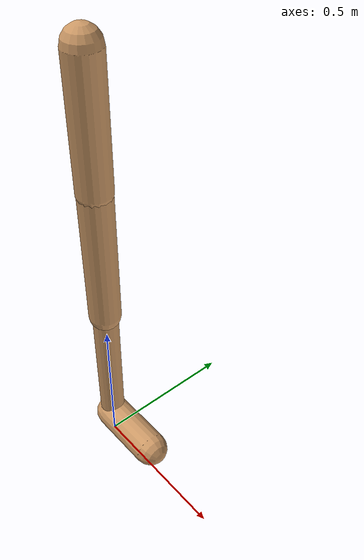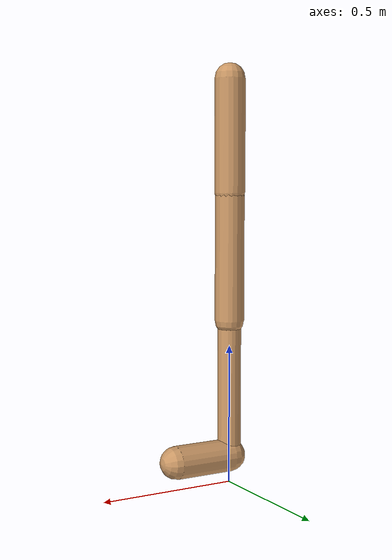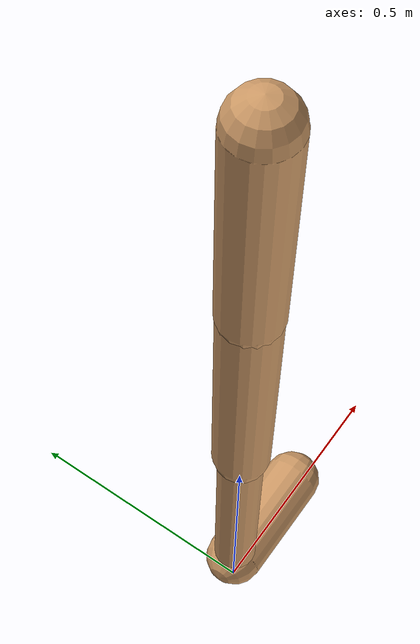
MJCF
<mujoco model="walker2d">
  <compiler angle="degree" coordinate="global" inertiafromgeom="true" />
  <default>
    <joint armature="0.01" damping=".1" limited="true" />
    <geom conaffinity="0" condim="3" contype="1" density="1000" friction="0.8 .1 .1" rgba="0.8 0.6 .4 1" />
  </default>
  <option integrator="RK4" timestep="0.002" />
  <worldbody>

    <body name="torso" pos="0 0 0.014154054730142467">
      <joint armature="0" axis="1 0 0" damping="0" limited="false" name="ignorex" pos="0 0 0" stiffness="0" type="slide" />
      <joint armature="0" axis="0 0 1" damping="0" limited="false" name="ignorez" pos="0 0 0" ref="1.25" stiffness="0" type="slide" />
      <joint armature="0" axis="0 1 0" damping="0" limited="false" name="ignorey" pos="0 0 0" stiffness="0" type="hinge" />
      <geom fromto="0 0 1.45 0 0 1.05" name="torso_geom" size="0.05444268229685742" type="capsule" />
      <body name="thigh">
        <joint axis="0 -1 0" name="thigh_joint" pos="0 0 1.05" range="-150 0" type="hinge" />
        <geom fromto="0.0 0.0 1.05 0.0 0.0 0.5932954477594061" name="thigh_geom" size="0.052411387058603834" type="capsule" />
        <body name="leg" pos="0.0 0.0 -0.006704552240593853">
          <joint axis="0 -1 0" name="leg_joint" pos="0 0 0.6" range="-150 0" type="hinge" />
          <geom fromto="0.0 0.0 0.6 0.0 0.0 0.09255049751045134" name="leg_geom" size="0.04192910964688307" type="capsule" />
          <body name="foot" pos="0.0 0.0 -0.007449502489548662">
            <joint axis="0 -1 0" name="foot_joint" pos="0 0 0.1" range="-45 45" type="hinge" />
            <geom fromto="-0.0 0.0 0.1 0.21751644350208568 0.0 0.1" name="foot_geom" size="0.05905817313872341" type="capsule" />
          </body>
        </body>
      </body>

      <body name="thigh_left">
        <joint axis="0 -1 0" name="thigh_left_joint" pos="0 0 1.05" range="-150 0" type="hinge" />
        <geom fromto="0.0 0.0 1.05 0.0 0.0 0.5932954477594061" name="thigh_left_geom" rgba=".7 .3 .6 1" size="0.052411387058603834" type="capsule" />
        <body name="leg_left" pos="0.0 0.0 -0.006704552240593853">
          <joint axis="0 -1 0" name="leg_left_joint" pos="0 0 0.6" range="-150 0" type="hinge" />
          <geom fromto="0.0 0.0 0.6 0.0 0.0 0.09255049751045134" name="leg_left_geom" rgba=".7 .3 .6 1" size="0.04192910964688307" type="capsule" />
          <body name="foot_left" pos="0.0 0.0 -0.007449502489548662">
            <joint axis="0 -1 0" name="foot_left_joint" pos="0 0 0.1" range="-45 45" type="hinge" />
            <geom fromto="-0.0 0.0 0.1 0.21751644350208568 0.0 0.1" name="foot_left_geom" rgba=".7 .3 .6 1" size="0.05905817313872341" type="capsule" />
          </body>
        </body>
      </body>
    </body>
  </worldbody>
  <actuator>

    <motor ctrllimited="true" ctrlrange="-1.0 1.0" gear="100" joint="thigh_joint" />
    <motor ctrllimited="true" ctrlrange="-1.0 1.0" gear="100" joint="leg_joint" />
    <motor ctrllimited="true" ctrlrange="-1.0 1.0" gear="100" joint="foot_joint" />
    <motor ctrllimited="true" ctrlrange="-1.0 1.0" gear="100" joint="thigh_left_joint" />
    <motor ctrllimited="true" ctrlrange="-1.0 1.0" gear="100" joint="leg_left_joint" />
    <motor ctrllimited="true" ctrlrange="-1.0 1.0" gear="100" joint="foot_left_joint" />

  </actuator>
</mujoco>
